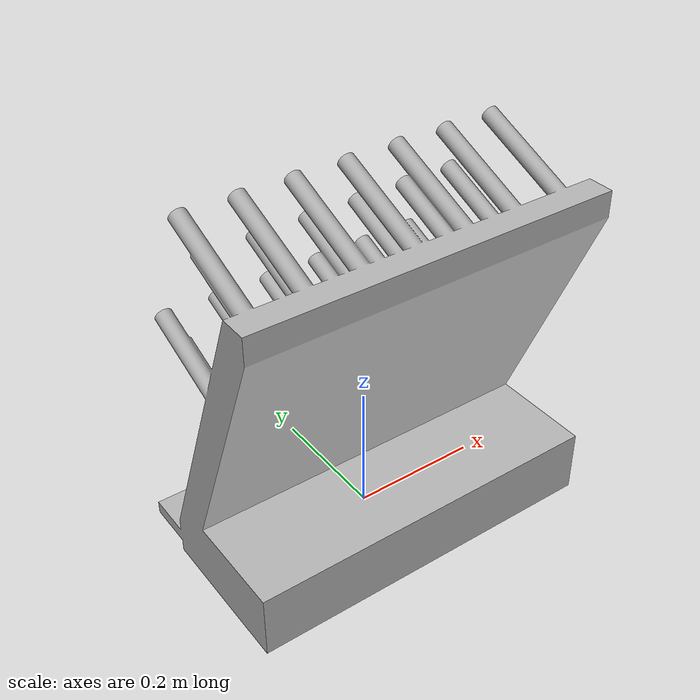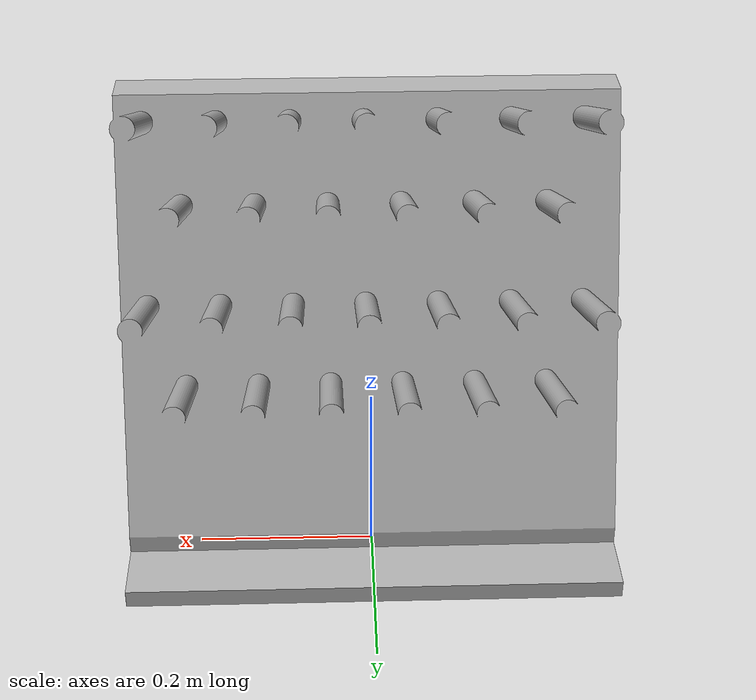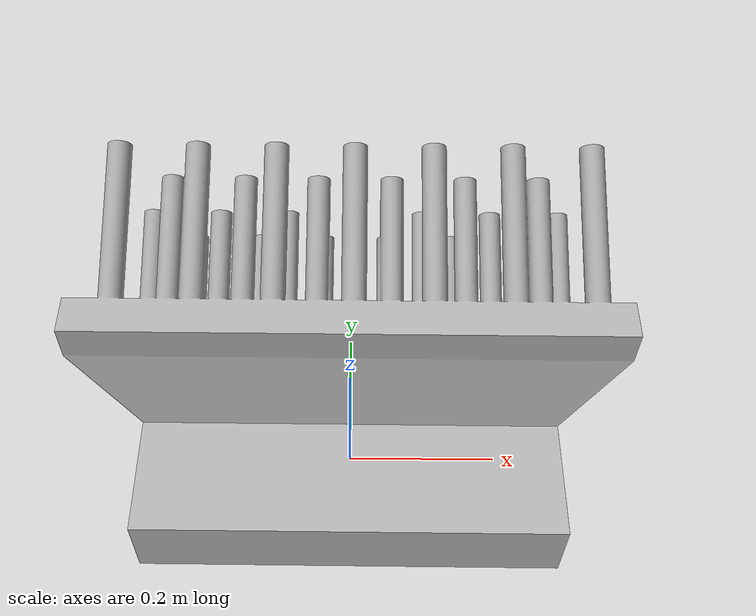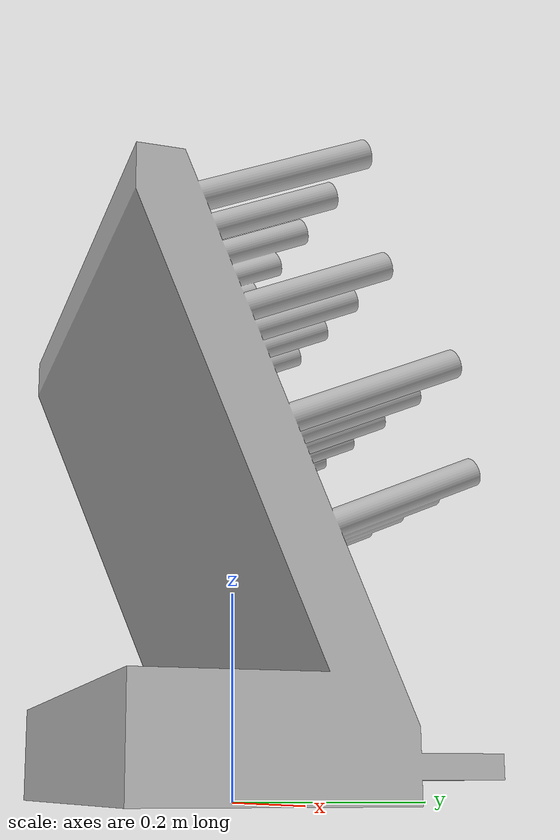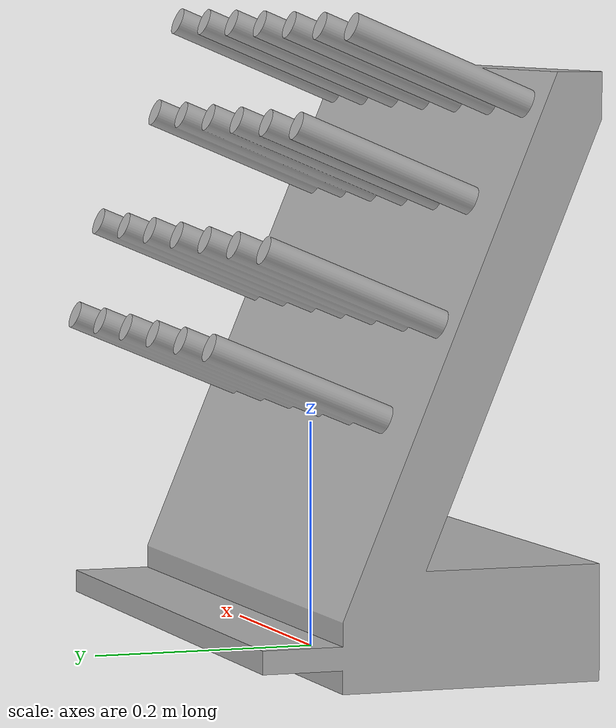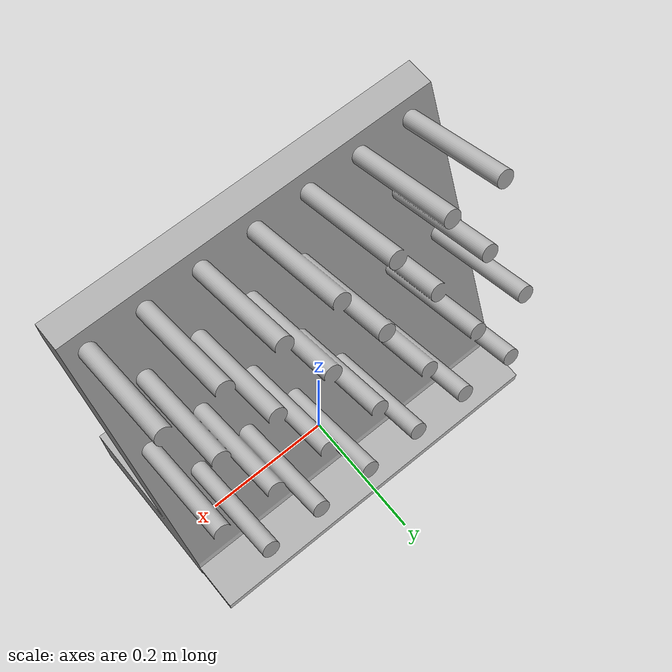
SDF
<?xml version='1.0'?>
<sdf version='1.7'>
  <model name='dryer'>
    <link name='link'>
      <self_collide>0</self_collide>
      <enable_wind>0</enable_wind>
      <kinematic>1</kinematic>
      <pose>0 0 0 0 -0 0</pose>
      <gravity>1</gravity>
      <inertial>
        <mass>3</mass>
        <pose>0 0 0 0 -0 0</pose>
        <inertia>
          <ixx>1</ixx>
          <ixy>0</ixy>
          <ixz>0</ixz>
          <iyy>1</iyy>
          <iyz>0</iyz>
          <izz>1</izz>
        </inertia>
      </inertial>
      <visual name='visual'>
        <geometry>
          <mesh>
            <uri>model://dryer/meshes/dryer.stl</uri>
            <scale>1 1 1</scale>
          </mesh>
        </geometry>
        <material>
          <shader type='pixel'>
            <normal_map>__default__</normal_map>
          </shader>
          <script>
            <name>ModelPreview_92::link::visual_MATERIAL_</name>
            <uri>__default__</uri>
          </script>
            <ambient>0.965 0.961 0.957 1</ambient>
            <diffuse>0.7 0.7 0.7 1</diffuse>
          <specular>0 0 0 1</specular>
          <emissive>0 0 0 1</emissive>
        </material>
        <pose>0 0 0 0 -0 0</pose>
        <transparency>0</transparency>
        <cast_shadows>1</cast_shadows>
      </visual>
      <collision name='collision'>
        <laser_retro>0</laser_retro>
        <max_contacts>10</max_contacts>
        <pose>0 0 0 0 -0 0</pose>
        <geometry>
          <mesh>
            <uri>/home/stepan/Документы/GitHub/ros2_chemical_competition/worlds/models/dryer/meshes/dryer.stl</uri>
            <scale>1 1 1</scale>
          </mesh>
        </geometry>
        <surface>
          <friction>
            <ode>
              <mu>1</mu>
              <mu2>1</mu2>
              <fdir1>0 0 0</fdir1>
              <slip1>0</slip1>
              <slip2>0</slip2>
            </ode>
            <torsional>
              <coefficient>1</coefficient>
              <patch_radius>0</patch_radius>
              <surface_radius>0</surface_radius>
              <use_patch_radius>1</use_patch_radius>
              <ode>
                <slip>0</slip>
              </ode>
            </torsional>
          </friction>
          <bounce>
            <restitution_coefficient>0</restitution_coefficient>
            <threshold>1e+06</threshold>
          </bounce>
          <contact>
            <collide_without_contact>0</collide_without_contact>
            <collide_without_contact_bitmask>1</collide_without_contact_bitmask>
            <collide_bitmask>1</collide_bitmask>
            <ode>
              <soft_cfm>0</soft_cfm>
              <soft_erp>0.2</soft_erp>
              <kp>1e+13</kp>
              <kd>1</kd>
              <max_vel>0.01</max_vel>
              <min_depth>0</min_depth>
            </ode>
            <bullet>
              <split_impulse>1</split_impulse>
              <split_impulse_penetration_threshold>-0.01</split_impulse_penetration_threshold>
              <soft_cfm>0</soft_cfm>
              <soft_erp>0.2</soft_erp>
              <kp>1e+13</kp>
              <kd>1</kd>
            </bullet>
          </contact>
        </surface>
      </collision>
    </link>
    <static>0</static>
    <allow_auto_disable>1</allow_auto_disable>
  </model>
</sdf>
